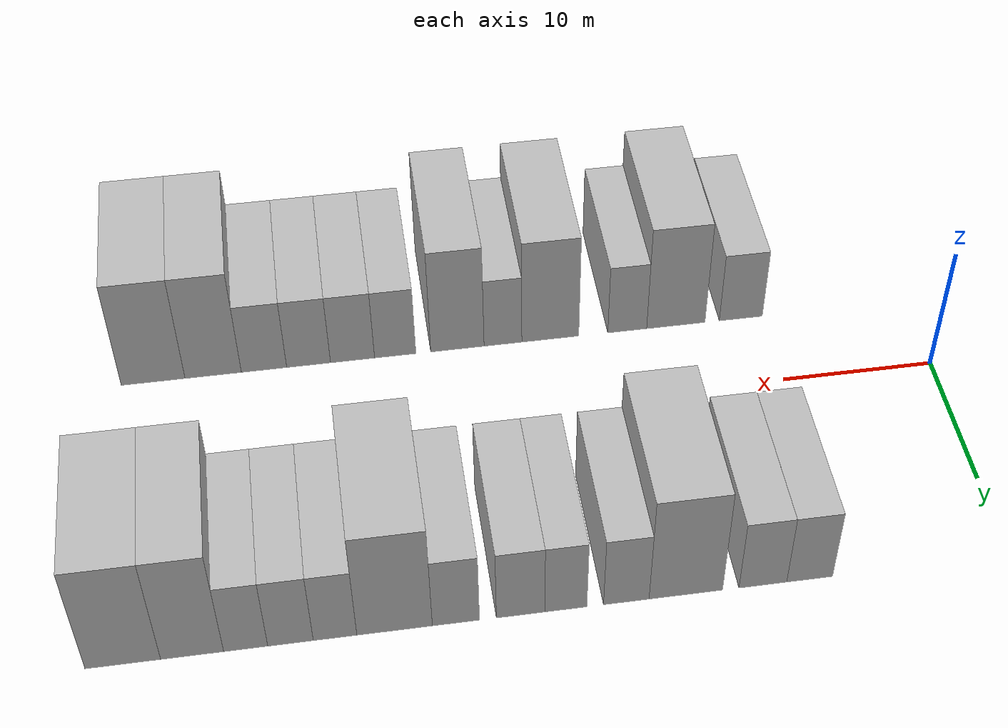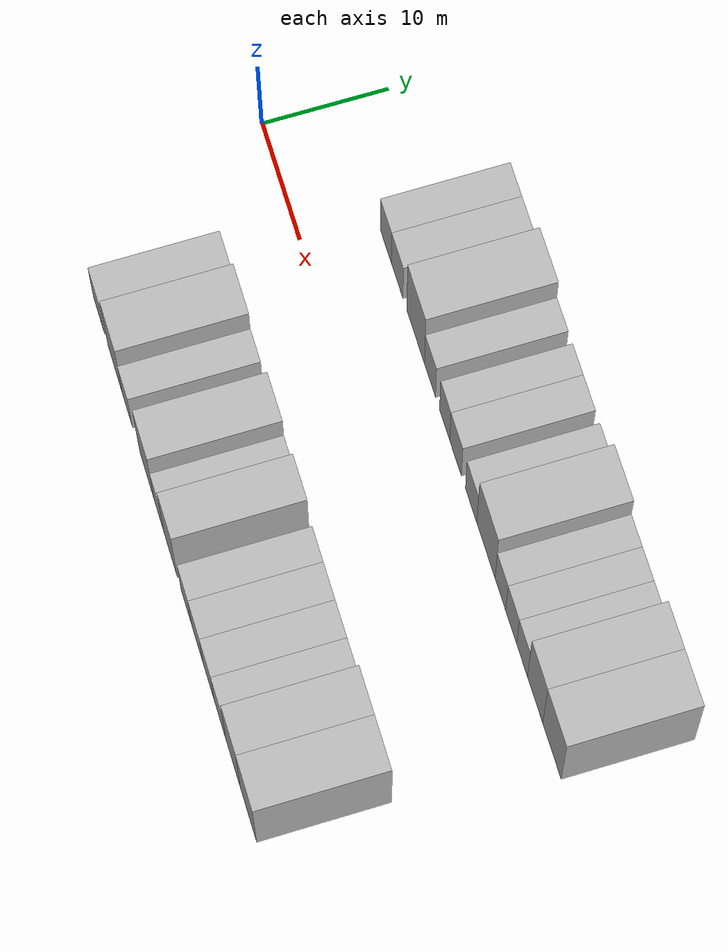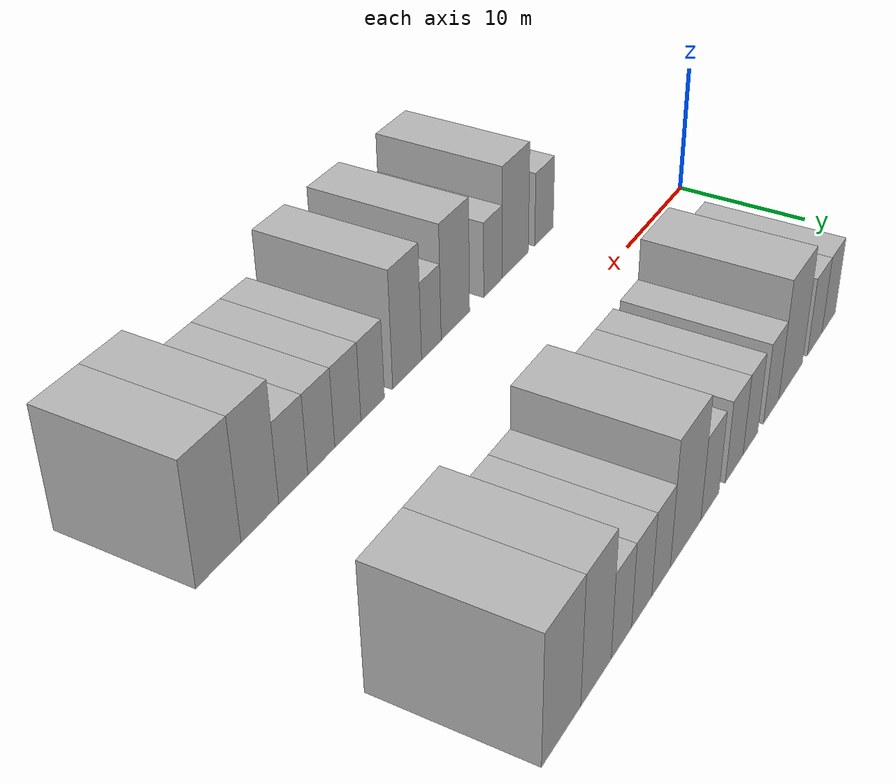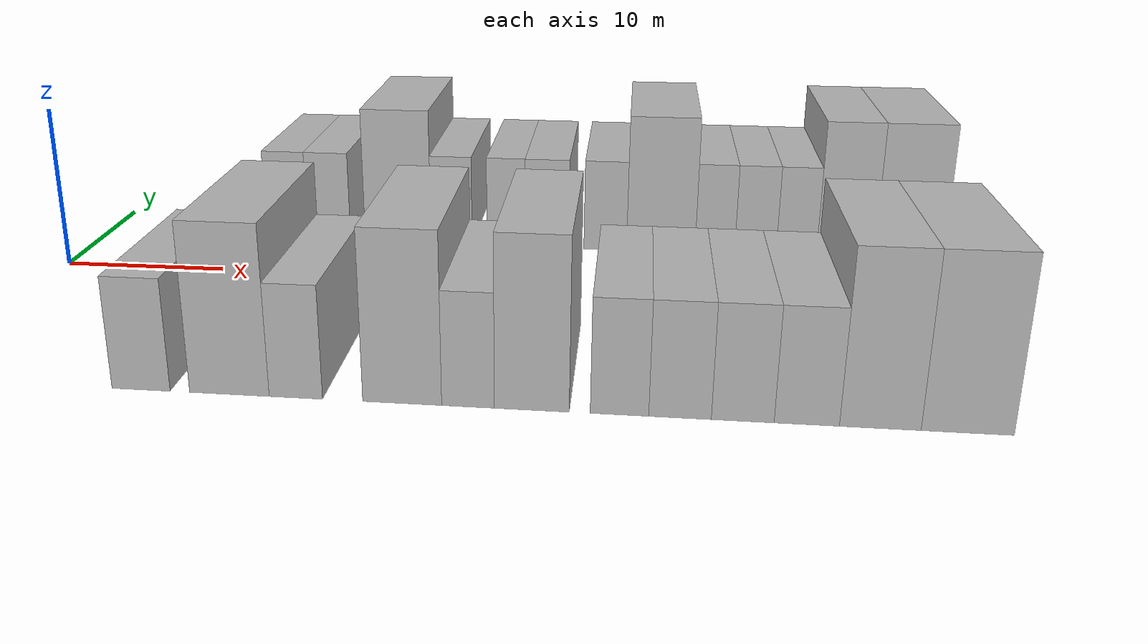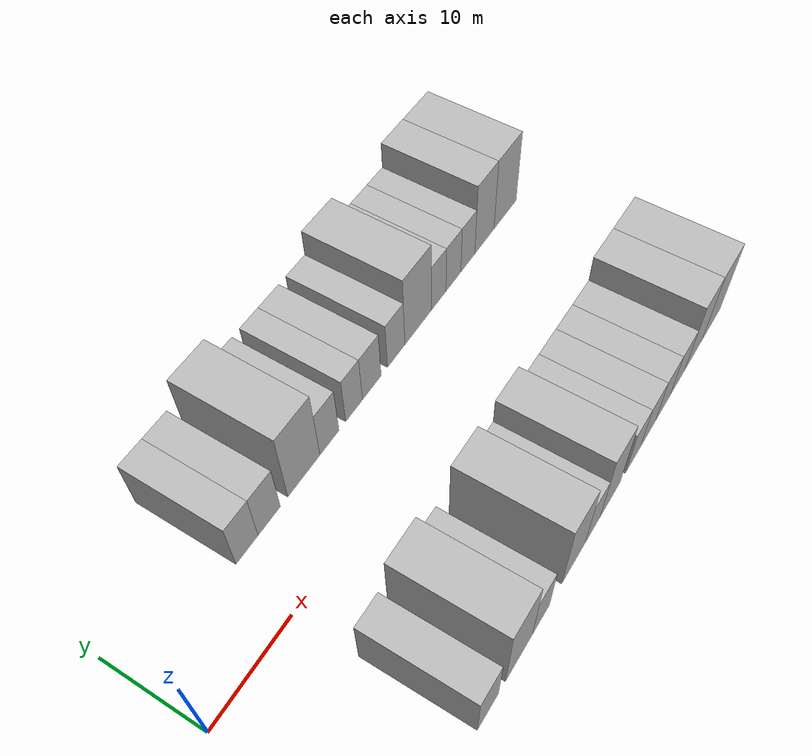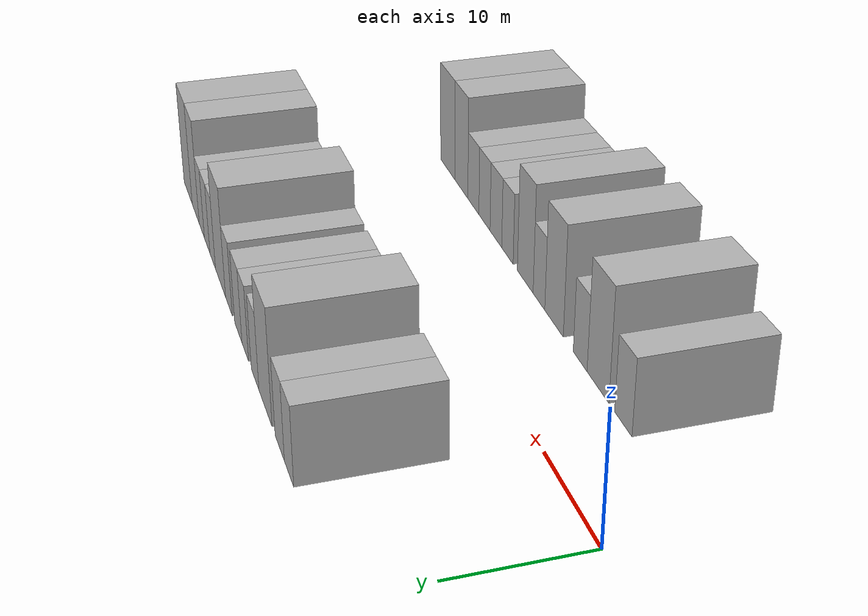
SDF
<sdf version="1.6">
 <world name="default">
  <model name="building_1">
   <static>1</static>
   <pose>12.4091 11.0000 0 0.000000 0.000000 1.570796</pose>
   <link name="link">
    <pose>0 0 3.00 0 0 0</pose>
    <collision name="collision"><geometry><box><size>10.0000 2.8182 6.0000</size></box></geometry></collision>
    <visual name="visual">
     <cast_shadows>0</cast_shadows>
     <geometry><box><size>10.0000 2.8182 6.0000</size></box></geometry>
     <material>
      <script>
       <uri>model://HANNAS_wall/materials/scripts</uri>
       <uri>model://HANNAS_wall/materials/textures</uri>
       <name>vrc/HANNAS_wall</name>
      </script>
     </material>
    </visual>
   </link>
  </model>
  <model name="building_2">
   <static>1</static>
   <pose>15.2784 11.0000 0 0.000000 0.000000 1.570796</pose>
   <link name="link">
    <pose>0 0 3.00 0 0 0</pose>
    <collision name="collision"><geometry><box><size>10.0000 2.9203 6.0000</size></box></geometry></collision>
    <visual name="visual">
     <cast_shadows>0</cast_shadows>
     <geometry><box><size>10.0000 2.9203 6.0000</size></box></geometry>
     <material>
      <script>
       <uri>model://HANNAS_wall/materials/scripts</uri>
       <uri>model://HANNAS_wall/materials/textures</uri>
       <name>vrc/HANNAS_wall</name>
      </script>
     </material>
    </visual>
   </link>
  </model>
  <model name="building_3">
   <static>1</static>
   <pose>19.9652 11.0000 0 0.000000 0.000000 1.570796</pose>
   <link name="link">
    <pose>0 0 4.50 0 0 0</pose>
    <collision name="collision"><geometry><box><size>10.0000 4.4532 9.0000</size></box></geometry></collision>
    <visual name="visual">
     <cast_shadows>0</cast_shadows>
     <geometry><box><size>10.0000 4.4532 9.0000</size></box></geometry>
     <material>
      <script>
       <uri>model://HANNAS_wall/materials/scripts</uri>
       <uri>model://HANNAS_wall/materials/textures</uri>
       <name>vrc/HANNAS_wall</name>
      </script>
     </material>
    </visual>
   </link>
  </model>
  <model name="building_4">
   <static>1</static>
   <pose>23.5626 11.0000 0 0.000000 0.000000 1.570796</pose>
   <link name="link">
    <pose>0 0 3.00 0 0 0</pose>
    <collision name="collision"><geometry><box><size>10.0000 2.7417 6.0000</size></box></geometry></collision>
    <visual name="visual">
     <cast_shadows>0</cast_shadows>
     <geometry><box><size>10.0000 2.7417 6.0000</size></box></geometry>
     <material>
      <script>
       <uri>model://HANNAS_wall/materials/scripts</uri>
       <uri>model://HANNAS_wall/materials/textures</uri>
       <name>vrc/HANNAS_wall</name>
      </script>
     </material>
    </visual>
   </link>
  </model>
  <model name="building_5">
   <static>1</static>
   <pose>27.1903 11.0000 0 0.000000 0.000000 1.570796</pose>
   <link name="link">
    <pose>0 0 3.00 0 0 0</pose>
    <collision name="collision"><geometry><box><size>10.0000 2.5137 6.0000</size></box></geometry></collision>
    <visual name="visual">
     <cast_shadows>0</cast_shadows>
     <geometry><box><size>10.0000 2.5137 6.0000</size></box></geometry>
     <material>
      <script>
       <uri>model://HANNAS_wall/materials/scripts</uri>
       <uri>model://HANNAS_wall/materials/textures</uri>
       <name>vrc/HANNAS_wall</name>
      </script>
     </material>
    </visual>
   </link>
  </model>
  <model name="building_6">
   <static>1</static>
   <pose>29.8882 11.0000 0 0.000000 0.000000 1.570796</pose>
   <link name="link">
    <pose>0 0 3.00 0 0 0</pose>
    <collision name="collision"><geometry><box><size>10.0000 2.8821 6.0000</size></box></geometry></collision>
    <visual name="visual">
     <cast_shadows>0</cast_shadows>
     <geometry><box><size>10.0000 2.8821 6.0000</size></box></geometry>
     <material>
      <script>
       <uri>model://HANNAS_wall/materials/scripts</uri>
       <uri>model://HANNAS_wall/materials/textures</uri>
       <name>vrc/HANNAS_wall</name>
      </script>
     </material>
    </visual>
   </link>
  </model>
  <model name="building_7">
   <static>1</static>
   <pose>33.7209 11.0000 0 0.000000 0.000000 1.570796</pose>
   <link name="link">
    <pose>0 0 3.00 0 0 0</pose>
    <collision name="collision"><geometry><box><size>10.0000 2.7834 6.0000</size></box></geometry></collision>
    <visual name="visual">
     <cast_shadows>0</cast_shadows>
     <geometry><box><size>10.0000 2.7834 6.0000</size></box></geometry>
     <material>
      <script>
       <uri>model://HANNAS_wall/materials/scripts</uri>
       <uri>model://HANNAS_wall/materials/textures</uri>
       <name>vrc/HANNAS_wall</name>
      </script>
     </material>
    </visual>
   </link>
  </model>
  <model name="building_8">
   <static>1</static>
   <pose>37.3267 11.0000 0 0.000000 0.000000 1.570796</pose>
   <link name="link">
    <pose>0 0 4.50 0 0 0</pose>
    <collision name="collision"><geometry><box><size>10.0000 4.4282 9.0000</size></box></geometry></collision>
    <visual name="visual">
     <cast_shadows>0</cast_shadows>
     <geometry><box><size>10.0000 4.4282 9.0000</size></box></geometry>
     <material>
      <script>
       <uri>model://HANNAS_wall/materials/scripts</uri>
       <uri>model://HANNAS_wall/materials/textures</uri>
       <name>vrc/HANNAS_wall</name>
      </script>
     </material>
    </visual>
   </link>
  </model>
  <model name="building_9">
   <static>1</static>
   <pose>40.8081 11.0000 0 0.000000 0.000000 1.570796</pose>
   <link name="link">
    <pose>0 0 3.00 0 0 0</pose>
    <collision name="collision"><geometry><box><size>10.0000 2.5346 6.0000</size></box></geometry></collision>
    <visual name="visual">
     <cast_shadows>0</cast_shadows>
     <geometry><box><size>10.0000 2.5346 6.0000</size></box></geometry>
     <material>
      <script>
       <uri>model://HANNAS_wall/materials/scripts</uri>
       <uri>model://HANNAS_wall/materials/textures</uri>
       <name>vrc/HANNAS_wall</name>
      </script>
     </material>
    </visual>
   </link>
  </model>
  <model name="building_10">
   <static>1</static>
   <pose>43.3943 11.0000 0 0.000000 0.000000 1.570796</pose>
   <link name="link">
    <pose>0 0 3.00 0 0 0</pose>
    <collision name="collision"><geometry><box><size>10.0000 2.6378 6.0000</size></box></geometry></collision>
    <visual name="visual">
     <cast_shadows>0</cast_shadows>
     <geometry><box><size>10.0000 2.6378 6.0000</size></box></geometry>
     <material>
      <script>
       <uri>model://HANNAS_wall/materials/scripts</uri>
       <uri>model://HANNAS_wall/materials/textures</uri>
       <name>vrc/HANNAS_wall</name>
      </script>
     </material>
    </visual>
   </link>
  </model>
  <model name="building_11">
   <static>1</static>
   <pose>45.9849 11.0000 0 0.000000 0.000000 1.570796</pose>
   <link name="link">
    <pose>0 0 3.00 0 0 0</pose>
    <collision name="collision"><geometry><box><size>10.0000 2.5434 6.0000</size></box></geometry></collision>
    <visual name="visual">
     <cast_shadows>0</cast_shadows>
     <geometry><box><size>10.0000 2.5434 6.0000</size></box></geometry>
     <material>
      <script>
       <uri>model://HANNAS_wall/materials/scripts</uri>
       <uri>model://HANNAS_wall/materials/textures</uri>
       <name>vrc/HANNAS_wall</name>
      </script>
     </material>
    </visual>
   </link>
  </model>
  <model name="building_12">
   <static>1</static>
   <pose>49.0629 11.0000 0 0.000000 0.000000 1.570796</pose>
   <link name="link">
    <pose>0 0 4.50 0 0 0</pose>
    <collision name="collision"><geometry><box><size>10.0000 3.6127 9.0000</size></box></geometry></collision>
    <visual name="visual">
     <cast_shadows>0</cast_shadows>
     <geometry><box><size>10.0000 3.6127 9.0000</size></box></geometry>
     <material>
      <script>
       <uri>model://HANNAS_wall/materials/scripts</uri>
       <uri>model://HANNAS_wall/materials/textures</uri>
       <name>vrc/HANNAS_wall</name>
      </script>
     </material>
    </visual>
   </link>
  </model>
  <model name="building_13">
   <static>1</static>
   <pose>53.0228 11.0000 0 0.000000 0.000000 1.570796</pose>
   <link name="link">
    <pose>0 0 4.50 0 0 0</pose>
    <collision name="collision"><geometry><box><size>10.0000 4.3072 9.0000</size></box></geometry></collision>
    <visual name="visual">
     <cast_shadows>0</cast_shadows>
     <geometry><box><size>10.0000 4.3072 9.0000</size></box></geometry>
     <material>
      <script>
       <uri>model://HANNAS_wall/materials/scripts</uri>
       <uri>model://HANNAS_wall/materials/textures</uri>
       <name>vrc/HANNAS_wall</name>
      </script>
     </material>
    </visual>
   </link>
  </model>
  <model name="building_51">
   <static>1</static>
   <pose>11.4990 -11.0000 0 0.000000 0.000000 1.570796</pose>
   <link name="link">
    <pose>0 0 3.00 0 0 0</pose>
    <collision name="collision"><geometry><box><size>10.0000 2.9979 6.0000</size></box></geometry></collision>
    <visual name="visual">
     <cast_shadows>0</cast_shadows>
     <geometry><box><size>10.0000 2.9979 6.0000</size></box></geometry>
     <material>
      <script>
       <uri>model://HANNAS_wall/materials/scripts</uri>
       <uri>model://HANNAS_wall/materials/textures</uri>
       <name>vrc/HANNAS_wall</name>
      </script>
     </material>
    </visual>
   </link>
  </model>
  <model name="building_52">
   <static>1</static>
   <pose>16.0169 -11.0000 0 0.000000 0.000000 1.570796</pose>
   <link name="link">
    <pose>0 0 4.50 0 0 0</pose>
    <collision name="collision"><geometry><box><size>10.0000 4.0380 9.0000</size></box></geometry></collision>
    <visual name="visual">
     <cast_shadows>0</cast_shadows>
     <geometry><box><size>10.0000 4.0380 9.0000</size></box></geometry>
     <material>
      <script>
       <uri>model://HANNAS_wall/materials/scripts</uri>
       <uri>model://HANNAS_wall/materials/textures</uri>
       <name>vrc/HANNAS_wall</name>
      </script>
     </material>
    </visual>
   </link>
  </model>
  <model name="building_53">
   <static>1</static>
   <pose>19.3747 -11.0000 0 0.000000 0.000000 1.570796</pose>
   <link name="link">
    <pose>0 0 3.00 0 0 0</pose>
    <collision name="collision"><geometry><box><size>10.0000 2.6776 6.0000</size></box></geometry></collision>
    <visual name="visual">
     <cast_shadows>0</cast_shadows>
     <geometry><box><size>10.0000 2.6776 6.0000</size></box></geometry>
     <material>
      <script>
       <uri>model://HANNAS_wall/materials/scripts</uri>
       <uri>model://HANNAS_wall/materials/textures</uri>
       <name>vrc/HANNAS_wall</name>
      </script>
     </material>
    </visual>
   </link>
  </model>
  <model name="building_54">
   <static>1</static>
   <pose>24.6554 -11.0000 0 0.000000 0.000000 1.570796</pose>
   <link name="link">
    <pose>0 0 4.50 0 0 0</pose>
    <collision name="collision"><geometry><box><size>10.0000 3.8837 9.0000</size></box></geometry></collision>
    <visual name="visual">
     <cast_shadows>0</cast_shadows>
     <geometry><box><size>10.0000 3.8837 9.0000</size></box></geometry>
     <material>
      <script>
       <uri>model://HANNAS_wall/materials/scripts</uri>
       <uri>model://HANNAS_wall/materials/textures</uri>
       <name>vrc/HANNAS_wall</name>
      </script>
     </material>
    </visual>
   </link>
  </model>
  <model name="building_55">
   <static>1</static>
   <pose>27.8798 -11.0000 0 0.000000 0.000000 1.570796</pose>
   <link name="link">
    <pose>0 0 3.00 0 0 0</pose>
    <collision name="collision"><geometry><box><size>10.0000 2.5652 6.0000</size></box></geometry></collision>
    <visual name="visual">
     <cast_shadows>0</cast_shadows>
     <geometry><box><size>10.0000 2.5652 6.0000</size></box></geometry>
     <material>
      <script>
       <uri>model://HANNAS_wall/materials/scripts</uri>
       <uri>model://HANNAS_wall/materials/textures</uri>
       <name>vrc/HANNAS_wall</name>
      </script>
     </material>
    </visual>
   </link>
  </model>
  <model name="building_56">
   <static>1</static>
   <pose>30.9660 -11.0000 0 0.000000 0.000000 1.570796</pose>
   <link name="link">
    <pose>0 0 4.50 0 0 0</pose>
    <collision name="collision"><geometry><box><size>10.0000 3.6073 9.0000</size></box></geometry></collision>
    <visual name="visual">
     <cast_shadows>0</cast_shadows>
     <geometry><box><size>10.0000 3.6073 9.0000</size></box></geometry>
     <material>
      <script>
       <uri>model://HANNAS_wall/materials/scripts</uri>
       <uri>model://HANNAS_wall/materials/textures</uri>
       <name>vrc/HANNAS_wall</name>
      </script>
     </material>
    </visual>
   </link>
  </model>
  <model name="building_57">
   <static>1</static>
   <pose>35.1552 -11.0000 0 0.000000 0.000000 1.570796</pose>
   <link name="link">
    <pose>0 0 3.00 0 0 0</pose>
    <collision name="collision"><geometry><box><size>10.0000 2.7711 6.0000</size></box></geometry></collision>
    <visual name="visual">
     <cast_shadows>0</cast_shadows>
     <geometry><box><size>10.0000 2.7711 6.0000</size></box></geometry>
     <material>
      <script>
       <uri>model://HANNAS_wall/materials/scripts</uri>
       <uri>model://HANNAS_wall/materials/textures</uri>
       <name>vrc/HANNAS_wall</name>
      </script>
     </material>
    </visual>
   </link>
  </model>
  <model name="building_58">
   <static>1</static>
   <pose>38.0108 -11.0000 0 0.000000 0.000000 1.570796</pose>
   <link name="link">
    <pose>0 0 3.00 0 0 0</pose>
    <collision name="collision"><geometry><box><size>10.0000 2.9401 6.0000</size></box></geometry></collision>
    <visual name="visual">
     <cast_shadows>0</cast_shadows>
     <geometry><box><size>10.0000 2.9401 6.0000</size></box></geometry>
     <material>
      <script>
       <uri>model://HANNAS_wall/materials/scripts</uri>
       <uri>model://HANNAS_wall/materials/textures</uri>
       <name>vrc/HANNAS_wall</name>
      </script>
     </material>
    </visual>
   </link>
  </model>
  <model name="building_59">
   <static>1</static>
   <pose>40.9382 -11.0000 0 0.000000 0.000000 1.570796</pose>
   <link name="link">
    <pose>0 0 3.00 0 0 0</pose>
    <collision name="collision"><geometry><box><size>10.0000 2.9147 6.0000</size></box></geometry></collision>
    <visual name="visual">
     <cast_shadows>0</cast_shadows>
     <geometry><box><size>10.0000 2.9147 6.0000</size></box></geometry>
     <material>
      <script>
       <uri>model://HANNAS_wall/materials/scripts</uri>
       <uri>model://HANNAS_wall/materials/textures</uri>
       <name>vrc/HANNAS_wall</name>
      </script>
     </material>
    </visual>
   </link>
  </model>
  <model name="building_60">
   <static>1</static>
   <pose>43.8944 -11.0000 0 0.000000 0.000000 1.570796</pose>
   <link name="link">
    <pose>0 0 3.00 0 0 0</pose>
    <collision name="collision"><geometry><box><size>10.0000 2.9977 6.0000</size></box></geometry></collision>
    <visual name="visual">
     <cast_shadows>0</cast_shadows>
     <geometry><box><size>10.0000 2.9977 6.0000</size></box></geometry>
     <material>
      <script>
       <uri>model://HANNAS_wall/materials/scripts</uri>
       <uri>model://HANNAS_wall/materials/textures</uri>
       <name>vrc/HANNAS_wall</name>
      </script>
     </material>
    </visual>
   </link>
  </model>
  <model name="building_61">
   <static>1</static>
   <pose>47.2454 -11.0000 0 0.000000 0.000000 1.570796</pose>
   <link name="link">
    <pose>0 0 4.50 0 0 0</pose>
    <collision name="collision"><geometry><box><size>10.0000 3.7042 9.0000</size></box></geometry></collision>
    <visual name="visual">
     <cast_shadows>0</cast_shadows>
     <geometry><box><size>10.0000 3.7042 9.0000</size></box></geometry>
     <material>
      <script>
       <uri>model://HANNAS_wall/materials/scripts</uri>
       <uri>model://HANNAS_wall/materials/textures</uri>
       <name>vrc/HANNAS_wall</name>
      </script>
     </material>
    </visual>
   </link>
  </model>
  <model name="building_62">
   <static>1</static>
   <pose>51.1810 -11.0000 0 0.000000 0.000000 1.570796</pose>
   <link name="link">
    <pose>0 0 4.50 0 0 0</pose>
    <collision name="collision"><geometry><box><size>10.0000 4.1671 9.0000</size></box></geometry></collision>
    <visual name="visual">
     <cast_shadows>0</cast_shadows>
     <geometry><box><size>10.0000 4.1671 9.0000</size></box></geometry>
     <material>
      <script>
       <uri>model://HANNAS_wall/materials/scripts</uri>
       <uri>model://HANNAS_wall/materials/textures</uri>
       <name>vrc/HANNAS_wall</name>
      </script>
     </material>
    </visual>
   </link>
  </model>
 </world>
</sdf>
